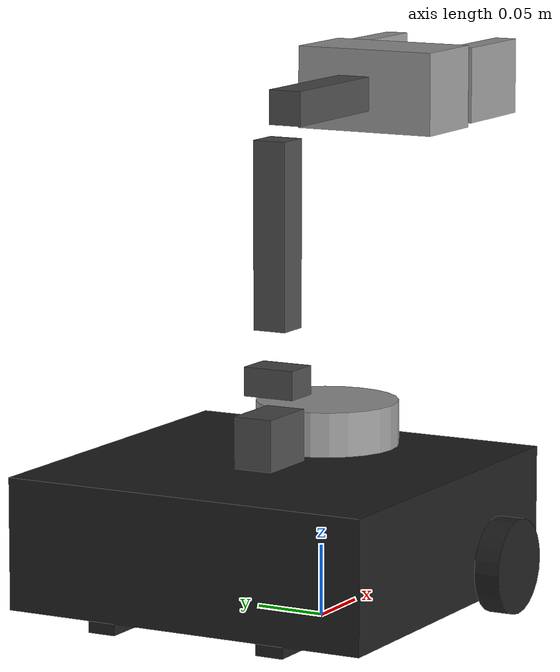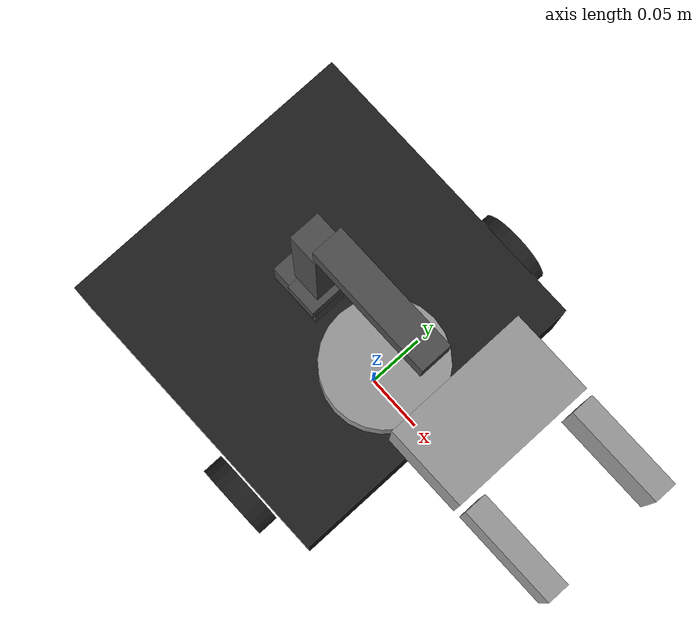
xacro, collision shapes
<?xml version="1.0" ?>
<robot name="tidybot" xmlns:xacro="http://ros.org/wiki/xacro">
  <xacro:include filename="$(find tidybot)/urdf/common_properties.xacro"/>
  <xacro:include filename="$(find tidybot)/urdf/robot_control.gazebo.xacro"/>

  <!-- Uncomment to disable the physics engine! -->

  <!-- PROPERTIES -->
  <xacro:property name="base_offset_x" value="-0.064"/>
  <xacro:property name="base_offset_y" value="0.0"/>
  <xacro:property name="base_offset_z" value="0.0"/>

  <xacro:property name="base_length" value="0.266"/>
  <xacro:property name="base_width" value="0.266"/>
  <xacro:property name="base_height" value="0.0915"/>

  <xacro:property name="arm_base_length" value="0.0465"/>
  <xacro:property name="arm_base_width" value="0.0285"/>
  <xacro:property name="arm_base_height" value="0.036"/>

  <xacro:property name="link_offset_x" value="0.02275"/>

  <xacro:property name="first_link_length" value="0.028"/>
  <xacro:property name="first_link_width" value="0.038"/>
  <xacro:property name="first_link_height" value="0.0405"/>

  <xacro:property name="second_link_length" value="0.024"/>
  <xacro:property name="second_link_width" value="0.170"/>
  <xacro:property name="second_link_height" value="0.024"/>

  <xacro:property name="third_link_length" value="0.024"/>
  <xacro:property name="third_link_width" value="0.024"/>
  <xacro:property name="third_link_height" value="0.120"/>

  <xacro:property name="gripper_base_length" value="0.070"/>
  <xacro:property name="gripper_base_width" value="0.104"/>
  <xacro:property name="gripper_base_height" value="0.05825"/>

  <xacro:property name="finger_length" value="0.072"/>
  <xacro:property name="finger_width" value="0.016"/>
  <xacro:property name="finger_height" value="0.0536"/>
  <xacro:property name="finger_length_to_center" value="0.0395"/>

  <xacro:property name="finger_origin_offset" value="0.012"/>
  <xacro:property name="finger_offset_gripper_open" value="0.036"/>

  <xacro:property name="collision_box_reduction" value="0.02"/>

    <!-- ##################### BASE ################# -->
  <link name="base_footprint"/>

  <joint name="base_joint" type="fixed">
    <parent link="base_footprint"/>
    <child link="base_link" />
    <origin xyz="0 0 0.03" rpy="0 0 0"/>
  </joint>

  <link name="base_link">
    <visual>
      <origin xyz="-0.064 0 0" rpy="0 0 0"/>
      <geometry>
        <mesh filename="$(find tidybot)/meshes/waffle_pi_base_for_open_manipulator.stl" scale="0.001 0.001 0.001"/>
      </geometry>
      <material name="light_black"/>
    </visual>

    <collision>
      <origin xyz="-0.064 0 0.04575" rpy="0 0 0"/>
      <geometry>
        <box size="0.266 0.266 0.0915"/>
      </geometry>
    </collision>

    <inertial>
      <origin xyz="0.0 0 0.0" rpy="0 0 0"/>
      <mass value="1.6329594e+00"/>
      <inertia ixx="8.7002718e-03" ixy="-4.7576583e-05" ixz="1.1160499e-04"
               iyy="8.6195418e-03" iyz="-3.5422299e-06"
               izz="1.4612727e-02" />
    </inertial>
  </link>

    <!-- ##################### WHEELS ################# -->
  <joint name="wheel_left_joint" type="continuous">
    <parent link="base_link"/>
    <child link="wheel_left_link"/>
    <origin xyz="0.0 0.144 0.023" rpy="-1.57 0 0"/>
    <axis xyz="0 0 1"/>
    <limit effort="100" velocity="10"/>
    <dynamics damping="0.7" friction="0.1"/>
  </joint>

  <link name="wheel_left_link">
    <visual>
      <origin xyz="0 0 0" rpy="1.57 0 0"/>
      <geometry>
        <mesh filename="$(find tidybot)/meshes/left_tire.stl" scale="0.001 0.001 0.001"/>
      </geometry>
      <material name="dark"/>
    </visual>

    <collision>
      <origin xyz="0 0 0" rpy="0 0 0"/>
      <geometry>
        <cylinder length="0.018" radius="0.033"/>
      </geometry>
    </collision>

    <inertial>
      <origin xyz="0 0 0" />
      <mass value="2.8498940e-02" />
      <inertia ixx="1.1175580e-05" ixy="-4.2369783e-11" ixz="-5.9381719e-09"
               iyy="1.1192413e-05" iyz="-1.4400107e-11"
               izz="2.0712558e-05" />
      </inertial>
  </link>

  <joint name="wheel_right_joint" type="continuous">
    <parent link="base_link"/>
    <child link="wheel_right_link"/>
    <origin xyz="0.0 -0.144 0.023" rpy="-1.57 0 0"/>
    <axis xyz="0 0 1"/>
    <limit effort="100" velocity="10"/>
    <dynamics damping="0.7" friction="0.1"/>
  </joint>

  <link name="wheel_right_link">
    <visual>
      <origin xyz="0 0 0" rpy="1.57 0 0"/>
      <geometry>
        <mesh filename="$(find tidybot)/meshes/right_tire.stl" scale="0.001 0.001 0.001"/>
      </geometry>
      <material name="dark"/>
    </visual>

    <collision>
      <origin xyz="0 0.001 0" rpy="0 0 0"/>
      <geometry>
        <cylinder length="0.018" radius="0.033"/>
      </geometry>
    </collision>

    <inertial>
      <origin xyz="0 0 0" />
      <mass value="2.8498940e-02" />
      <inertia ixx="1.1175580e-05" ixy="-4.2369783e-11" ixz="-5.9381719e-09"
               iyy="1.1192413e-05" iyz="-1.4400107e-11"
               izz="2.0712558e-05" />
      </inertial>
  </link>

  <!-- ##################### ARM BASE ################# -->

  <joint name="arm_base_joint" type="fixed">
    <parent link="base_link"/>
    <child link="arm_base_link"/>
    <origin xyz="${base_offset_x} 0 ${base_height}" rpy="0 0 0"/>
    <axis xyz="0 0 1"/>
  </joint>

  <link name="arm_base_link">
    <visual>
      <origin xyz="0 0 ${arm_base_height}" rpy="0 0 0"/>
      <geometry>
        <mesh filename="$(find tidybot)/meshes/arm_base.stl" scale="0.001 0.001 0.001"/>
      </geometry>
      <material name="dark_grey"/>
    </visual>

    <collision>
      <origin xyz="-0.0120 0 ${arm_base_height / 2}" rpy="0 0 0"/>
      <geometry>
        <box size="${arm_base_length} ${arm_base_width} ${arm_base_height}"/>
      </geometry>
    </collision>

    <inertial>
      <origin xyz="0 0 0" />
      <mass value="0.045438" />
      <inertia ixx="0.022246769" ixy="-3.359e-16" ixz="-9.84364e-03"
               iyy="0.033754425" iyz="-4.002e-15"
               izz="0.017275382" />
      </inertial>
  </link>

  <!-- ###################### FIRST LINK #####################-->
  <joint name="first_link_joint" type="revolute">
    <parent link="arm_base_link"/>
    <child link="first_link"/>
    <origin xyz="0 0 ${arm_base_height}" rpy="0 0 0"/>
    <axis xyz="0 0 1"/>
    <limit effort="100" velocity="100" lower="${-(2*pi)}" upper="${2*pi}"/>
    <dynamics damping="0.7" friction="0.1"/>
  </joint>

  <link name="first_link">
    <visual>
      <origin xyz="0 0 0" rpy="0 0 0"/>
      <geometry>
        <mesh filename="$(find tidybot)/meshes/first_link.stl" scale="0.001 0.001 0.001"/>
      </geometry>
      <material name="dark_grey"/>
    </visual>

    <collision>
      <origin xyz="0 0 ${first_link_height / 2}" rpy="0 0 0"/>
      <geometry>
        <box size="${first_link_length - 0.001} ${first_link_width - 0.001} ${first_link_height / 2}"/>
      </geometry>
    </collision>

    <inertial>
      <origin xyz="0 0 0" />
      <mass value="0.060172" />
      <inertia ixx="0.080027617" ixy="7.2e-08" ixz="4.88443e-04"
               iyy="0.079853221" iyz="7.46091e-04"
               izz="0.01237546" />
      </inertial>
  </link>

  <!-- ##################### SECOND LINK ################# -->
  <joint name="second_link_joint" type="revolute">
    <parent link="first_link"/>
    <child link="second_link"/>
    <origin xyz="0 0 ${arm_base_height}" rpy="0 0 0"/>
    <axis xyz="0 1 0"/>
    <limit effort="100" velocity="100" lower="${-(pi)}" upper="${pi}"/>
    <dynamics damping="0.7" friction="0.1"/>

  </joint>

  <link name="second_link">
    <visual>
      <origin xyz="0 0 ${second_link_width}" rpy="${-(pi/2)} 0 ${pi/2}"/>
      <geometry>
        <mesh filename="$(find tidybot)/meshes/link_170.stl" scale="0.001 0.001 0.001"/>
      </geometry>
      <material name="dark_grey"/>
    </visual>

    <collision>
      <origin xyz="0 0 ${second_link_width / 2}" rpy="${pi/2} 0 0"/>
      <geometry>
        <box size="${second_link_length} ${second_link_width - 0.04} ${second_link_height}"/>
      </geometry>
    </collision>

    <inertial>
      <origin xyz="0 0 0" />
      <mass value="0.113071" />
      <inertia ixx="0.7624" ixy="-8362.873e-06" ixz="38.222e-06"
               iyy="24555.216e-06" iyz="694.419e-06"
               izz="0.7688" />
      </inertial>
  </link>

  <!-- ##################### THIRD LINK ################# -->
  <joint name="third_link_joint" type="revolute">
    <parent link="second_link"/>
    <child link="third_link"/>
    <origin xyz="0 0 ${second_link_width}" rpy="0 0 0"/>
    <axis xyz="0 1 0"/>
    <limit effort="100" velocity="100" lower="${-(2*pi/3)}" upper="${2*pi/3}"/>
    <dynamics damping="0.7" friction="0.1"/>

  </joint>

  <link name="third_link">
    <visual>
      <origin xyz="${third_link_height} 0 0" rpy="0 0 ${pi/2}"/>
      <geometry>
        <mesh filename="$(find tidybot)/meshes/link_120.stl" scale="0.001 0.001 0.001"/>
      </geometry>
      <material name="dark_grey"/>
    </visual>

    <collision>
      <origin xyz="${third_link_height / 2} 0 0" rpy="0 ${pi/2} 0"/>
      <geometry>
        <box size="${third_link_length} ${third_link_width} ${third_link_height - collision_box_reduction}"/>
      </geometry>
    </collision>

    <inertial>
      <origin xyz="0 0 0" />
      <mass value="0.094954" />
      <inertia ixx="0.3042" ixy="-4760.104e-03" ixz="38.221e-06"
               iyy="0.022830453" iyz="697.679e-06"
               izz="0.3104" />
      </inertial>
  </link>

  <!-- ################## GRIPPER BASE ################### -->
  <joint name="gripper_base_joint" type="revolute">
    <parent link="third_link"/>
    <child link="gripper_base"/>
    <origin xyz="${third_link_height} 0 0" rpy="0 0 0"/>
    <axis xyz="0 1 0"/>
    <limit effort="100" velocity="100" lower="-${pi/2}" upper="${pi/2}"/>
    <dynamics damping="0.7" friction="0.1"/>

  </joint>

  <link name="gripper_base">
    <visual>
      <origin xyz="0 0 0" rpy="0 0 ${-pi/2}"/>
      <geometry>
        <mesh filename="$(find tidybot)/meshes/gripper_base.stl" scale="0.001 0.001 0.001"/>
      </geometry>
      <material name="grey"/>
    </visual>

    <collision>
      <origin xyz="${gripper_base_length / 2} 0 0" rpy="0 0 0"/>
      <geometry>
        <box size="${gripper_base_length - 0.01} ${gripper_base_width} ${gripper_base_height}"/>
      </geometry>
    </collision>

    <inertial>
      <origin xyz="0 0 0" />
      <mass value="0.102503" />
      <inertia ixx="0.3017" ixy="1.76e-07" ixz="-2.5e-08"
               iyy="79281.744e-06" iyz="-35713.616e-06"
               izz="0.3159" />
      </inertial>
  </link>

  <!-- ################# LEFT FINGER ################# -->
  <joint name="left_finger_joint" type="prismatic">
    <parent link="gripper_base"/>
    <child link="left_finger"/>
    <origin xyz="${gripper_base_length} ${finger_origin_offset + finger_offset_gripper_open} 0" rpy="0 0 0"/>
    <axis xyz="0 1 0"/>
    <limit effort="100" velocity="100" lower="0" upper="${finger_origin_offset + finger_offset_gripper_open}"/>
    <dynamics damping="0.7" friction="0.5"/>

  </joint>

  <link name="left_finger">
    <visual>
      <origin xyz="0 0 0" rpy="0 0 0"/>
      <geometry>
        <mesh filename="$(find tidybot)/meshes/gripper_finger.stl" scale="0.001 0.001 0.001"/>
      </geometry>
      <material name="grey"/>
    </visual>

    <collision>
      <origin xyz="${finger_length / 2} ${-((finger_origin_offset / 2) - 0.002)} 0" rpy="0 0 0"/>
      <geometry>
        <box size="${finger_length} ${finger_width} ${finger_height}"/>
      </geometry>
    </collision>

    <inertial>
      <origin xyz="0 0 0" />
      <mass value="0.02010" />
      <inertia ixx="5415.545e-06" ixy="3374.112e-06" ixz="80.229e-06"
               iyy="23455.219e-06" iyz="-8.18e-06"
               izz="20163.876e-06" />
      </inertial>
  </link>

  <!-- ################# RIGHT FINGER ################# -->
  <joint name="right_finger_joint" type="prismatic">
    <parent link="gripper_base"/>
    <child link="right_finger"/>
    <origin xyz="${gripper_base_length} ${-(finger_origin_offset + finger_offset_gripper_open)} 0" rpy="0 0 0"/>
    <axis xyz="0 1 0"/>
    <limit effort="100" velocity="100" lower="${-(finger_origin_offset + finger_offset_gripper_open)}" upper="0"/>
    <dynamics damping="0.7" friction="0.5"/>

  </joint>

  <link name="right_finger">
    <visual>
      <origin xyz="0 0 0" rpy="${pi} 0 0"/>
      <geometry>
        <mesh filename="$(find tidybot)/meshes/gripper_finger.stl" scale="0.001 0.001 0.001"/>
      </geometry>
      <material name="grey"/>
    </visual>

    <collision>
      <origin xyz="${finger_length / 2} ${(finger_origin_offset / 2) - 0.002} 0" rpy="0 0 0"/>
      <geometry>
        <box size="${finger_length} ${finger_width} ${finger_height}"/>
      </geometry>
    </collision>

    <inertial>
      <origin xyz="0 0 0" />
      <mass value="0.02010" />
      <inertia ixx="5415.545e-06" ixy="3374.112e-06" ixz="80.229e-06"
               iyy="23455.219e-06" iyz="-8.18e-06"
               izz="20163.876e-06" />
      </inertial>
  </link>

    <!-- ##################### CASTERS ################# -->
  <joint name="caster_back_right_joint" type="fixed">
    <parent link="base_link"/>
    <child link="caster_back_right_link"/>
    <origin xyz="-0.177 -0.064 -0.004" rpy="-1.57 0 0"/>
  </joint>

  <link name="caster_back_right_link">
    <collision>
      <origin xyz="0 0.001 0" rpy="0 0 0"/>
      <geometry>
        <box size="0.030 0.009 0.020"/>
      </geometry>
    </collision>

    <inertial>
      <origin xyz="0 0 0" />
      <mass value="0.005724" />
      <inertia ixx="467.937e-06" ixy="0.0" ixz="0.0"
               iyy="229.437e-06" iyz="0.0"
               izz="620.10e-06" />
    </inertial>
  </link>

  <joint name="caster_back_left_joint" type="fixed">
    <parent link="base_link"/>
    <child link="caster_back_left_link"/>
    <origin xyz="-0.177 0.064 -0.004" rpy="-1.57 0 0"/>
  </joint>

  <link name="caster_back_left_link">
    <collision>
      <origin xyz="0 0.001 0" rpy="0 0 0"/>
      <geometry>
        <box size="0.030 0.009 0.020"/>
      </geometry>
    </collision>

    <inertial>
      <origin xyz="0 0 0" />
      <mass value="0.005724" />
      <inertia ixx="467.937e-06" ixy="0.0" ixz="0.0"
               iyy="229.437e-06" iyz="0.0"
               izz="620.10e-06" />
    </inertial>
  </link>

    <!-- ##################### SENSORS ################# -->
  <joint name="imu_joint" type="fixed">
    <parent link="base_link"/>
    <child link="imu_link"/>
    <origin xyz="0.0 0 0.068" rpy="0 0 0"/>
  </joint>

  <link name="imu_link"/>

  <joint name="scan_joint" type="fixed">
    <parent link="base_link"/>
    <child link="base_scan"/>
    <origin xyz="-0.024 0 0.122" rpy="0 0 0"/>
  </joint>

  <link name="base_scan">
    <visual>
      <origin xyz="0.02 0 -0.01" rpy="0 0 0"/>
      <geometry>
        <mesh filename="$(find tidybot)/meshes/lds.stl" scale="0.001 0.001 0.001"/>
      </geometry>
      <material name="dark"/>
    </visual>

    <collision>
      <origin xyz="0.032 0 -0.015" rpy="0 0 0"/>
      <geometry>
        <cylinder length="0.031" radius="0.05"/>
      </geometry>
    </collision>

    <inertial>
      <mass value="0.114" />
      <origin xyz="0 0 0" />
      <inertia ixx="0.001e-06" ixy="0.0" ixz="0.0"
               iyy="0.001e-06" iyz="0.0"
               izz="0.001e-06" />
    </inertial>
  </link>

</robot>
